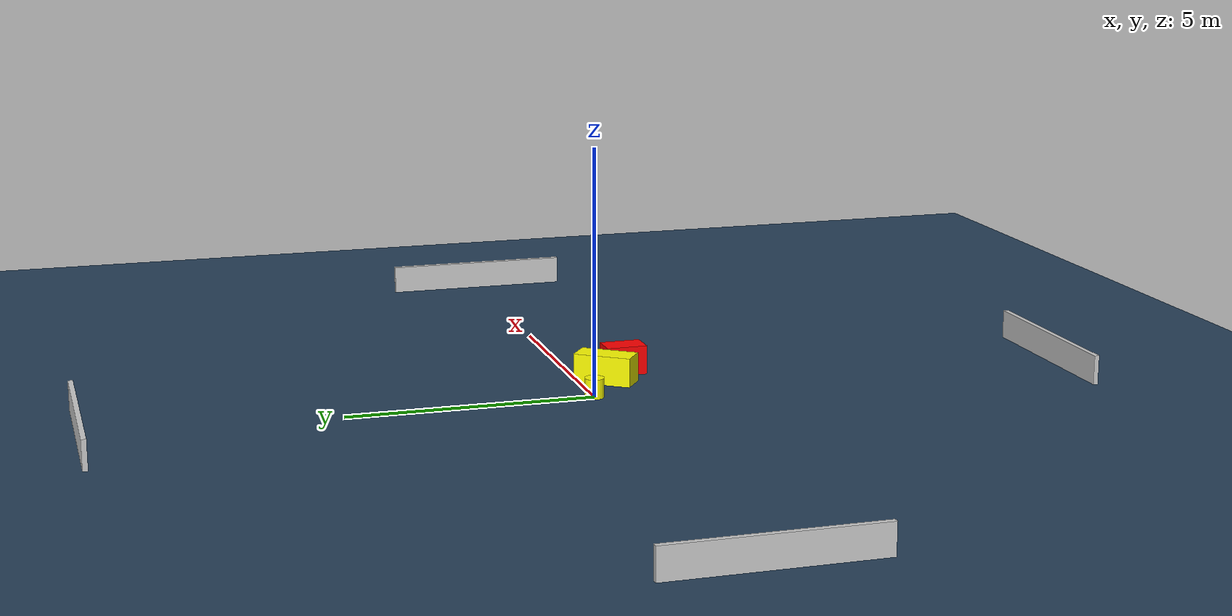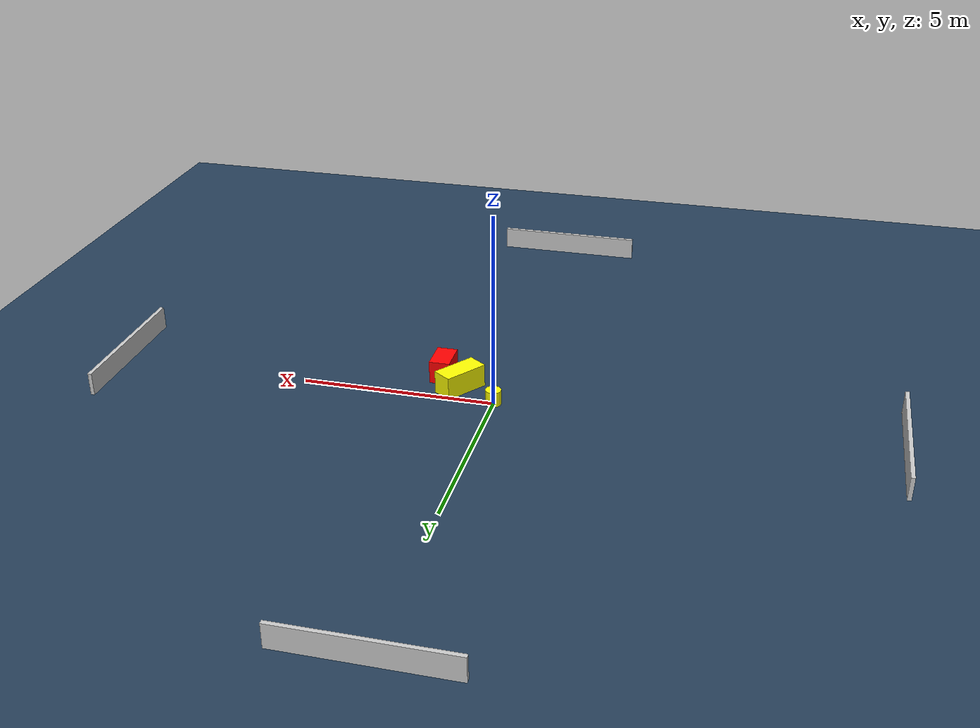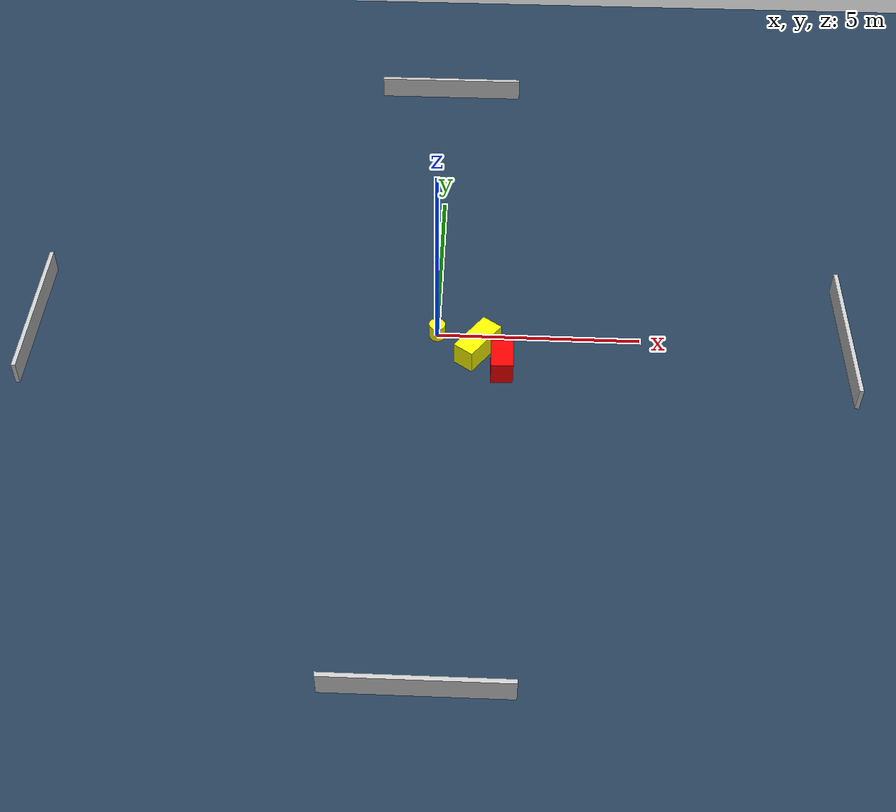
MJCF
<?xml version="1.0" ?>
<mujoco model="generated_environment">
  <option timestep="0.01" integrator="RK4" cone="elliptic"/>
  <default>
    <geom density="1"/>
  </default>
  <asset>
    <texture builtin="gradient" height="3072" name="skybox" rgb1="0.3 0.5 0.7" rgb2="0 0 0" type="skybox" width="512"/>
    <texture builtin="checker" height="300" name="groundplane" rgb1="0.2 0.3 0.4" rgb2="0.1 0.2 0.3" type="2d" width="300"/>
    <material name="groundplane" reflectance="0.2" texrepeat="5 5" texture="groundplane"/>
  </asset>
  <worldbody>
    <light dir="0 0 -1" directional="true" pos="0 0 1.5"/>
    <geom condim="3" friction="0.5 0.005 0.001" material="groundplane" name="floor" pos="0 0 0" size="0 0 0.05" type="plane"/>
    <body name="walls">
      <geom name="wall_1" condim="4" pos="-10.0 0.0 0.3" rgba="0.800000011920929 0.800000011920929 0.800000011920929 1.0" size="0.05 2.0 0.3" type="box"/>
      <geom name="wall_2" condim="4" pos="10.0 0.0 0.3" rgba="0.800000011920929 0.800000011920929 0.800000011920929 1.0" size="0.05 2.0 0.3" type="box"/>
      <geom name="wall_3" condim="4" pos="0.0 -10.0 0.3" rgba="0.800000011920929 0.800000011920929 0.800000011920929 1.0" size="2.0 0.05 0.3" type="box"/>
      <geom name="wall_4" condim="4" pos="0.0 10.0 0.3" rgba="0.800000011920929 0.800000011920929 0.800000011920929 1.0" size="2.0 0.05 0.3" type="box"/>
    </body>
    <body name="robot">
      <joint name="joint_x" type="slide" pos="0 0 0" axis="1 0 0"/>
      <joint name="joint_y" type="slide" pos="0 0 0" axis="0 1 0"/>
      <geom name="robot" type="cylinder" pos="0.0 0.0 0.2" size="0.2 0.2 0.0" mass="5.0" friction="1.0 0.005 0.0001" condim="4" rgba="1.0 1.0 0.0 1.0"/>
    </body>
    <body name="obstacle_1_movable">
      <geom name="obstacle_1_movable" condim="4" pos="1.0085804392375703 -0.5434187168944603 0.3" euler="0 0 144.03606808860644" friction="0.0 0.005 0.001" rgba="1.0 1.0 0.0 1.0" size="0.2722329154589411 0.5984237225526141 0.3" type="box" mass="0.1"/>
      <joint type="free"/>
    </body>
    <body name="obstacle_2_static">
      <geom name="obstacle_2_static" condim="4" pos="1.601284426064384 -1.0987753209465154 0.3" euler="0 0 0.4126184868111471" friction="0.0 0.005 0.001" rgba="1.0 0.0 0.0 1.0" size="0.2666661413484034 0.42332807944698103 0.3" type="box"/>
    </body>
  </worldbody>
  <actuator>
    <motor name="actuator_x" joint="joint_x" gear="1" ctrlrange="-1 1"/>
    <motor name="actuator_y" joint="joint_y" gear="1" ctrlrange="-1 1"/>
  </actuator>
</mujoco>
